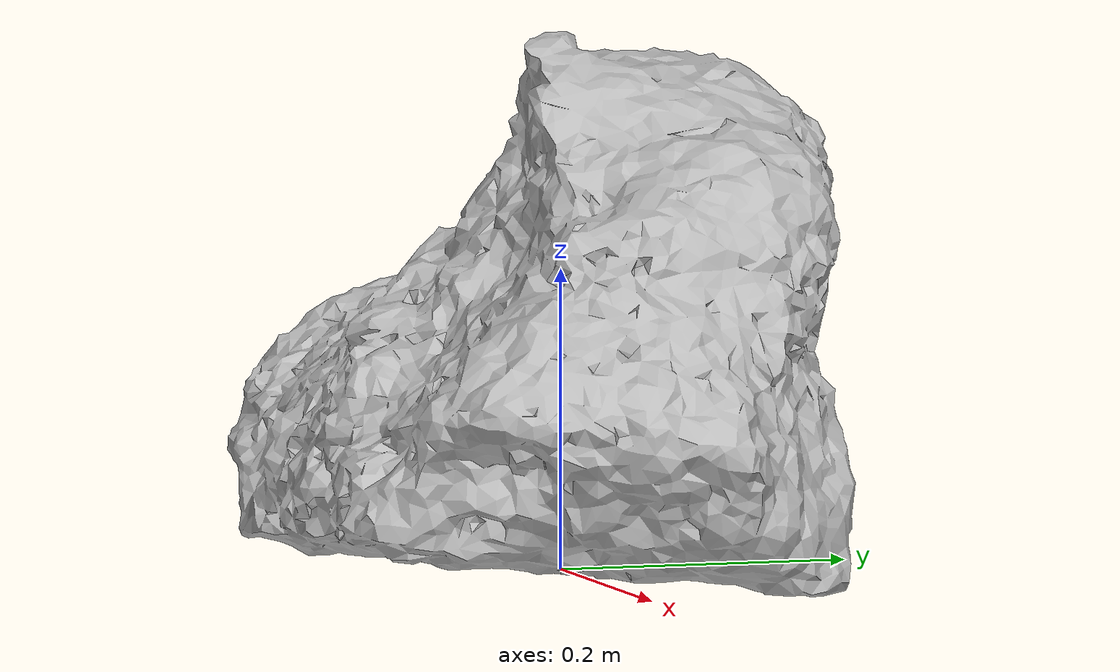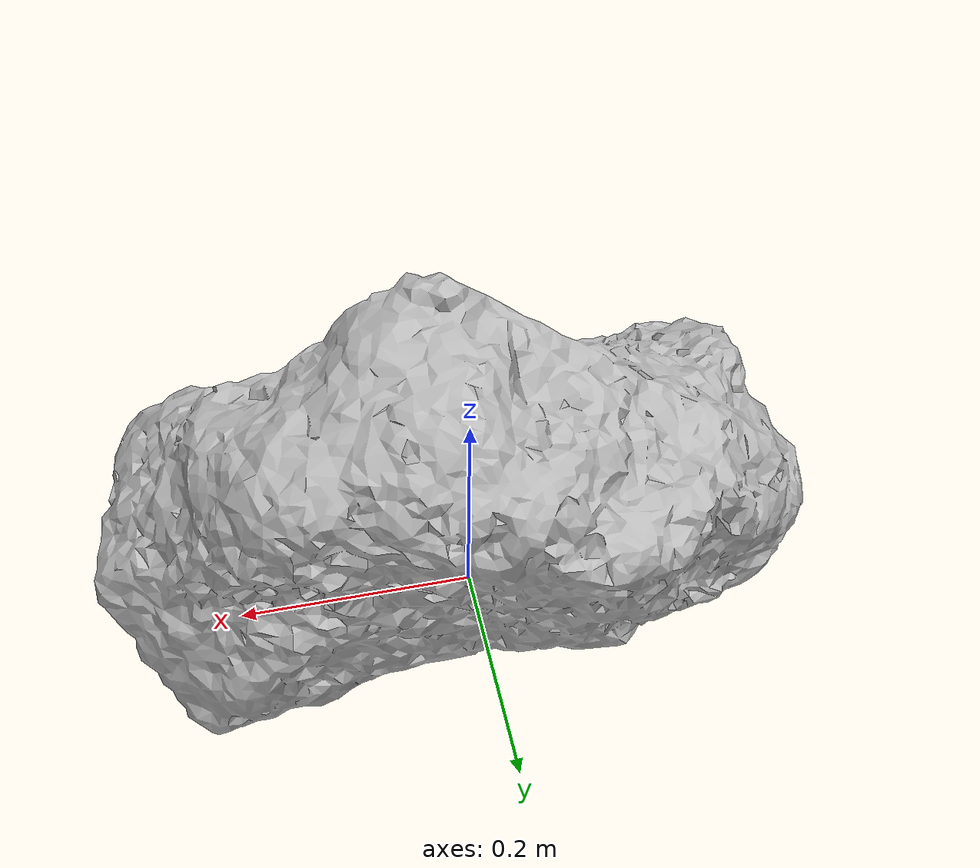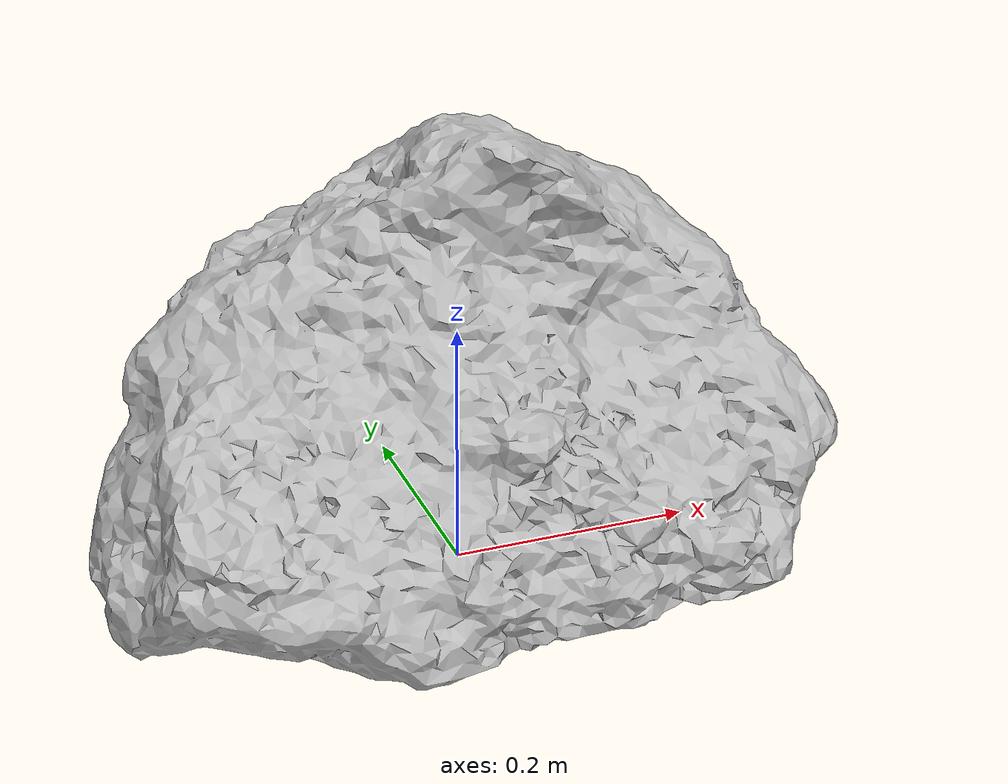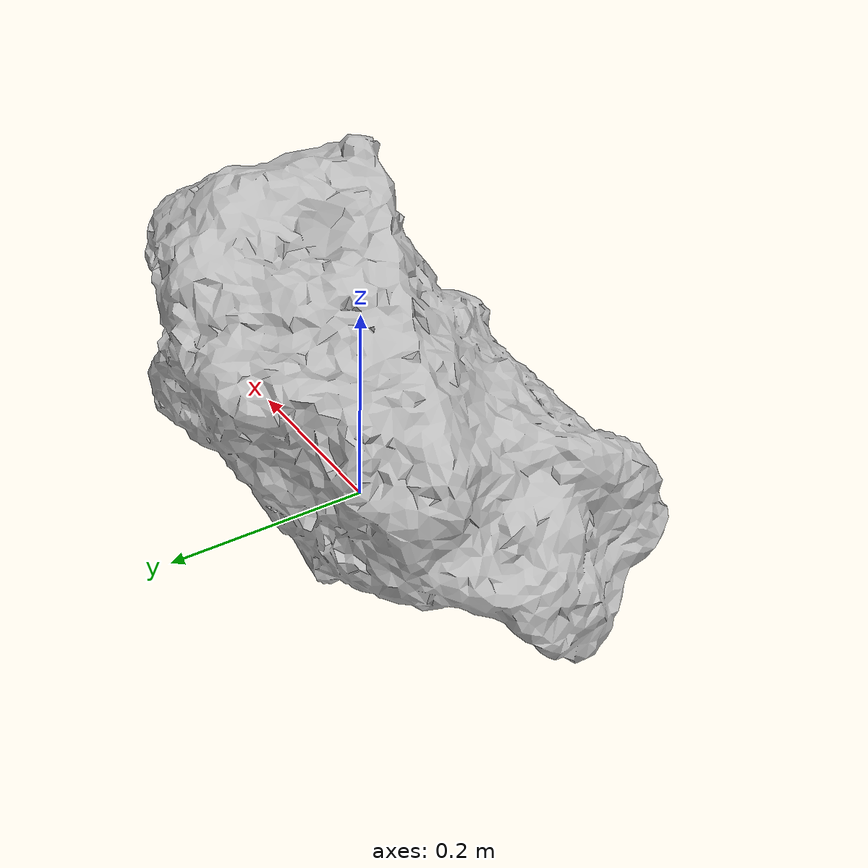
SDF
<?xml version="1.0"?>
<sdf version="1.7">
  <model name="rock3">
    <static>true</static>
    <link name="main_link">
      <collision name="plane_collision">
        <geometry>
          <mesh>
            <uri>model://rock3/meshes/rock3.dae</uri>
          </mesh>
        </geometry>
      </collision>
      <visual name="plane_visual">
        <geometry>
          <mesh>
            <uri>model://rock3/meshes/rock3.dae</uri>
          </mesh>
        </geometry>
        <material>
          <script>
            <uri>model://rock3/materials/scripts</uri>
            <uri>model://rock3/materials/textures</uri>
            <name>Rock3/Material</name>
          </script>
        </material>
      </visual>
    </link>
  </model>
</sdf>
